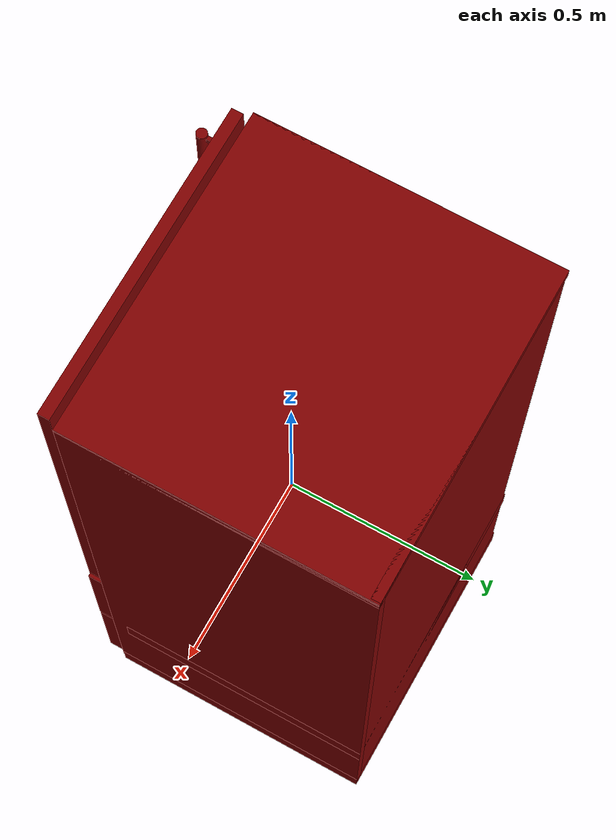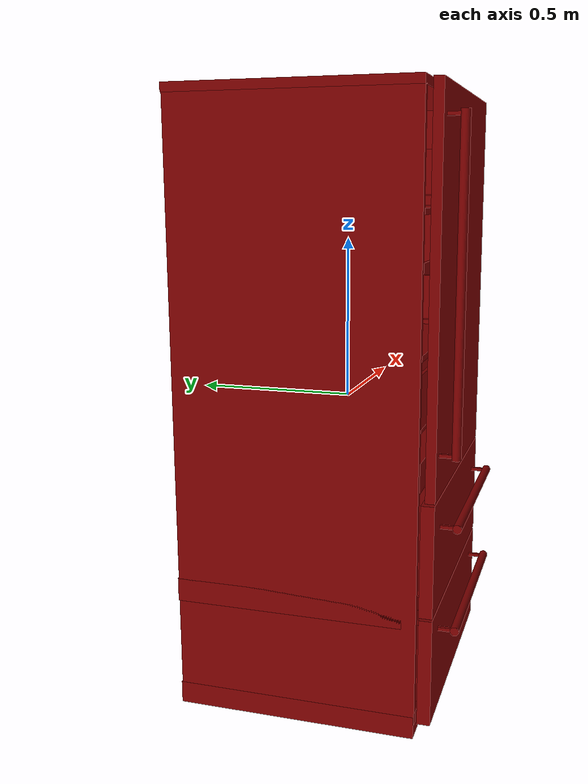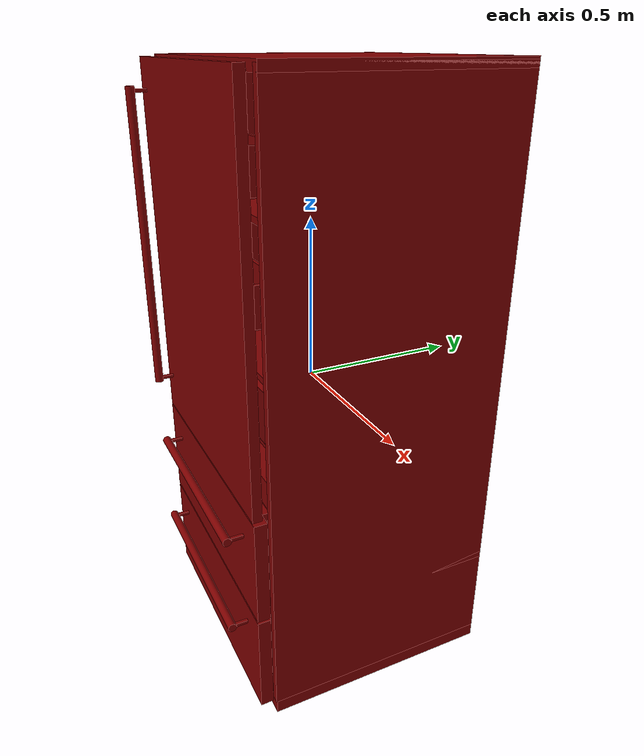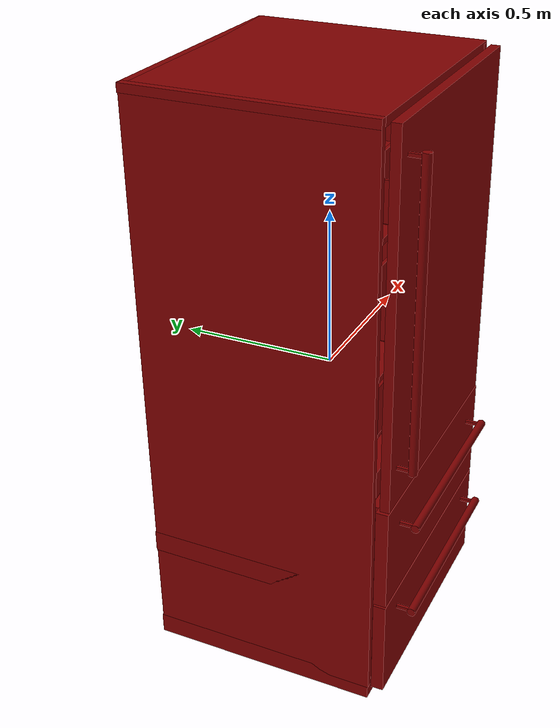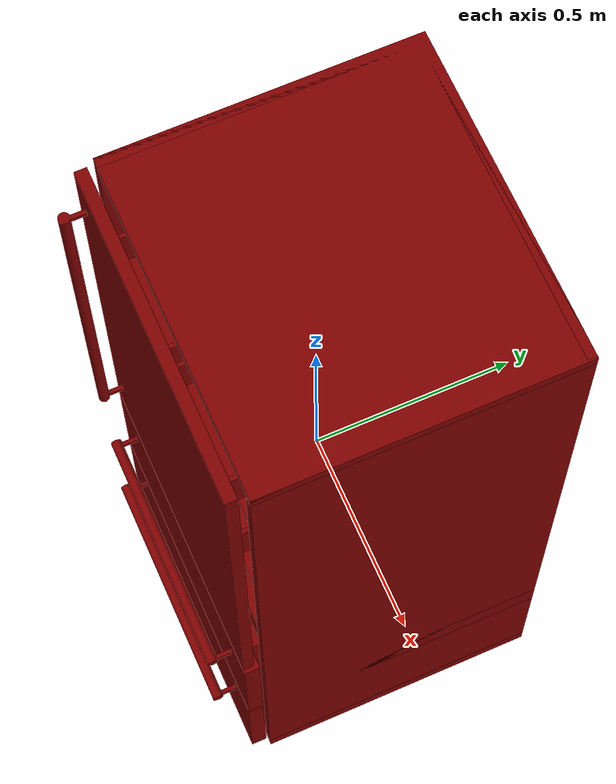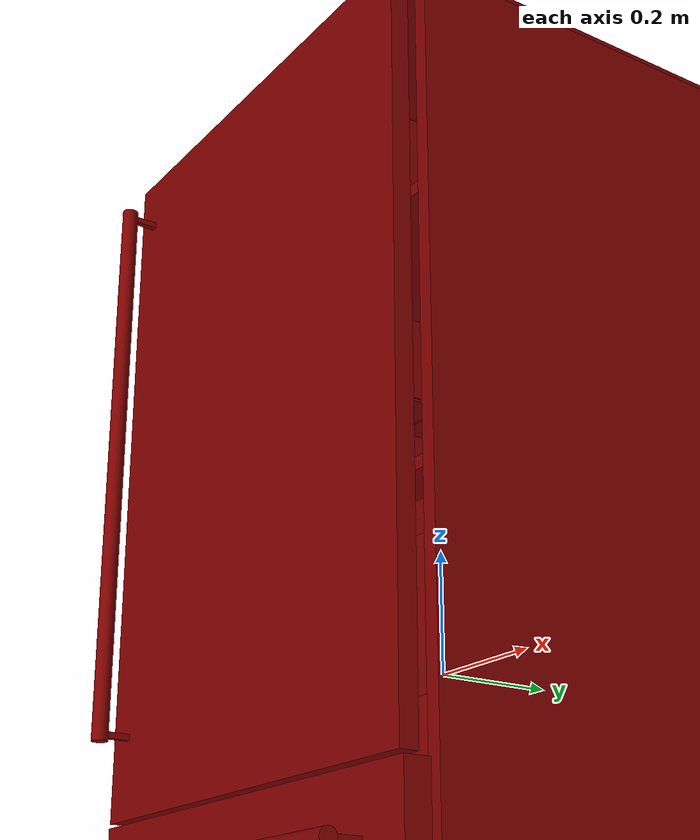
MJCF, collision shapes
<?xml version='1.0' encoding='UTF-8'?>
<mujoco model="model">
  <option timestep="0.002" gravity="0.0 0.0 -9.81"/>
  <compiler angle="radian"/>
  <asset>
    <mesh file="visuals/freezer0.obj" name="freezer0_vis"/>
    <mesh file="visuals/freezer1.obj" name="freezer1_vis"/>
    <mesh file="visuals/fridge_door.obj" name="fridge_door_vis"/>
    <mesh file="visuals/fridge_door_Clear.obj" name="fridge_door_Clear_vis"/>
    <mesh file="visuals/fridge_drawer0.obj" name="fridge_drawer0_vis"/>
    <mesh file="visuals/Body001.obj" name="Body001_vis"/>
    <mesh file="visuals/Body001_Clear.obj" name="Body001_Clear_vis"/>
    <texture file="visuals/T_BC001.png" name="Body001_material" type="2d"/>
    <material name="Body001_material" rgba="1 1 1 1.0" texture="Body001_material" shininess="0.1" specular="5"/>
    <texture file="visuals/T_BC001.png" name="freezer0_material" type="2d"/>
    <material name="freezer0_material" rgba="1 1 1 1.0" texture="freezer0_material" shininess="0.1" specular="5"/>
    <texture file="visuals/T_BC001.png" name="freezer1_material" type="2d"/>
    <material name="freezer1_material" rgba="1 1 1 1.0" texture="freezer1_material" shininess="0.1" specular="5"/>
    <texture file="visuals/T_BC001.png" name="fridge_door_material" type="2d"/>
    <material name="fridge_door_material" rgba="1 1 1 1.0" texture="fridge_door_material" shininess="0.1" specular="5"/>
    <material name="fridge_door_Clear_material" rgba="0.6450680494308472 0.6450680494308472 0.6450680494308472 0.699999988079071" shininess="0.5" specular="0.3103448502657381"/>
    <texture file="visuals/T_BC001.png" name="fridge_drawer0_material" type="2d"/>
    <material name="fridge_drawer0_material" rgba="1 1 1 1.0" texture="fridge_drawer0_material" shininess="0.1" specular="5"/>
    <material name="Body001_Clear_material" rgba="0.6450680494308472 0.6450680494308472 0.6450680494308472 0.699999988079071" shininess="0.5" specular="0.3103448502657381"/>
  </asset>
  <default>
    <default class="visual">
      <geom conaffinity="0" contype="0" group="1" type="mesh"/>
    </default>
    <default class="collision">
      <geom group="0" rgba="0.5 0 0 0.5"/>
    </default>
    <default class="spawn">
      <geom group="0" rgba="1 1 1 0.5" contype="0" conaffinity="0"/>
      <site group="0" rgba="1 1 1 0.5"/>
    </default>
    <default class="region">
      <geom group="1" conaffinity="0" contype="0" rgba="0 1 0 0"/>
    </default>
  </default>
  <worldbody>
    <body>
      <body name="object">
        <geom mesh="Body001_vis" type="mesh" solimp="0.998 0.998 0.001" solref="0.001 1" friction="0.95 0.3 0.1" class="visual" material="Body001_material"/>
        <geom class="collision" type="box" pos="-0.39497751 0.05395034 0.02155653" size="0.011891854926943779 0.37056872248649597 0.9155135750770569" quat="1.0 0.0 0.0 0.0"/>
        <geom class="collision" type="box" pos="-0.00000002 0.05545800 0.92354369" size="0.40686941146850586 0.3720763921737671 0.013526342809200287" quat="1.0 0.0 0.0 0.0"/>
        <geom class="collision" type="box" pos="0.39497739 0.05545801 0.01801842" size="0.011892003938555717 0.3720764219760895 0.9119754433631897" quat="1.0 0.0 0.0 0.0"/>
        <geom class="collision" type="box" pos="0.00540148 0.06342331 0.58872682" size="0.3973832428455353 0.36109575629234314 0.009213412180542946" quat="1.0 0.0 0.0 0.0"/>
        <geom class="collision" type="box" pos="0.00540148 0.06342331 0.17739993" size="0.3973832428455353 0.36109575629234314 0.009213412180542946" quat="1.0 0.0 0.0 0.0"/>
        <geom class="collision" type="box" pos="0.00540148 0.06342331 -0.17582542" size="0.3973832428455353 0.36109575629234314 0.04417560249567032" quat="1.0 0.0 0.0 0.0"/>
        <geom class="collision" type="box" pos="-0.00000002 0.05650592 -0.90281916" size="0.40686941146850586 0.37102845311164856 0.03425087034702301" quat="1.0 0.0 0.0 0.0"/>
        <geom class="collision" type="box" pos="0.00540148 0.41649570 0.03226795" size="0.3973832428455353 0.011038696393370628 0.9048020839691162" quat="1.0 0.0 0.0 0.0"/>
        <geom class="collision" type="box" pos="-0.00000002 0.07640629 -0.55741584" size="0.40686941146850586 0.35112807154655457 0.03589528053998947" quat="1.0 0.0 0.0 0.0"/>
        <body name="freezer0">
          <geom class="region" name="reg_freezer0" type="box" pos="-0.009549875000000013 0.023480625000000005 -0.70870924" size="0.28844478500000004 0.289434965 0.09238983"/>
          <joint axis="0.0 -1.0 0.0" pos="-0.00000131 -0.04179691 -0.72343755" limited="true" name="freezer0_door_joint" range="0.0 0.45" type="slide" damping="1" frictionloss="1" armature=".01" stiffness="0.05"/>
          <geom mesh="freezer0_vis" type="mesh" solimp="0.998 0.998 0.001" solref="0.001 1" friction="0.95 0.3 0.1" class="visual" material="freezer0_material"/>
          <geom class="collision" type="box" pos="-0.01719630 0.00805857 -0.82255793" size="0.2997744083404541 0.310689240694046 0.0164509154856205" quat="1.0 0.0 0.0 0.0"/>
          <geom class="collision" type="box" pos="0.31374428 0.02064973 -0.72549593" size="0.030391253530979156 0.323280930519104 0.11351040005683899" quat="1.0 0.0 0.0 0.0"/>
          <geom class="collision" type="box" pos="-0.33325869 0.00805857 -0.72549593" size="0.03039240837097168 0.31069034337997437 0.1135106012225151" quat="1.0 0.0 0.0 0.0"/>
          <geom class="collision" type="box" pos="-0.00967104 -0.31512372 -0.71773422" size="0.35102763772010803 0.020464807748794556 0.12127181887626648" quat="1.0 0.0 0.0 0.0"/>
          <geom class="collision" type="box" pos="-0.02586513 0.32982935 -0.72549593" size="0.3348340690135956 0.011941133067011833 0.11351102590560913" quat="1.0 0.0 0.0 0.0"/>
          <geom class="collision" type="box" pos="-0.00089944 -0.34363709 -0.72607809" size="0.39961814880371094 0.019954252988100052 0.16411897540092468" quat="1.0 0.0 0.0 0.0" name="freezer0_door_main"/>
          <geom class="collision" type="cylinder" pos="0.00185995 -0.41500480 -0.62553763" size="0.013434533961117268 0.31531861424446106" quat="0.7071068286895752 -0.0 0.7071067690849304 0.0" name="freezer0_door_handle_main"/>
          <geom class="collision" type="box" pos="-0.30049911 -0.38361881 -0.62673843" size="0.005130494944751263 0.022282758727669716 0.005130494944751263" quat="1.0 0.0 0.0 0.0" name="freezer0_door_handle_1"/>
          <geom class="collision" type="box" pos="0.30714712 -0.38361881 -0.62673843" size="0.005130494944751263 0.022282758727669716 0.005130494944751263" quat="1.0 0.0 0.0 0.0" name="freezer0_door_handle_2"/>
        </body>
        <body name="freezer1">
          <geom class="region" name="reg_freezer1" type="box" pos="-0.009549875000000013 0.023480625000000005 -0.359045865" size="0.28844478500000004 0.289434965 0.10523338499999998"/>
          <joint axis="0.0 -1.0 0.0" pos="-0.00000131 -0.04179691 -0.38421291" limited="true" name="freezer1_door_joint" range="0.0 0.45" type="slide" damping="1" frictionloss="1" armature=".01" stiffness="0.05"/>
          <geom mesh="freezer1_vis" type="mesh" solimp="0.998 0.998 0.001" solref="0.001 1" friction="0.95 0.3 0.1" class="visual" material="freezer1_material"/>
          <geom class="collision" type="box" pos="-0.00089944 -0.34363709 -0.38572156" size="0.3996121883392334 0.019953878596425056 0.16868935525417328" quat="1.0 0.0 0.0 0.0" name="freezer1_door_main"/>
          <geom class="collision" type="box" pos="-0.02715708 0.33091291 -0.37637243" size="0.33648502826690674 0.01302456296980381 0.12684671580791473" quat="1.0 0.0 0.0 0.0"/>
          <geom class="collision" type="box" pos="-0.00967104 -0.31512372 -0.36607426" size="0.3510238230228424 0.020464569330215454 0.13714516162872314" quat="1.0 0.0 0.0 0.0"/>
          <geom class="collision" type="box" pos="-0.33325872 0.00805857 -0.37637240" size="0.030392171815037727 0.3106876313686371 0.12684723734855652" quat="1.0 0.0 0.0 0.0"/>
          <geom class="collision" type="box" pos="0.31374428 0.02064986 -0.37637240" size="0.030391089618206024 0.3232794404029846 0.1268475204706192" quat="1.0 0.0 0.0 0.0"/>
          <geom class="collision" type="box" pos="-0.00975666 0.00805857 -0.48593163" size="0.2931008040904999 0.31068870425224304 0.017292514443397522" quat="1.0 0.0 0.0 0.0"/>
          <geom class="collision" type="cylinder" pos="0.00185995 -0.41500480 -0.30819646" size="0.013434533961117268 0.31531861424446106" quat="0.7071068286895752 -0.0 0.7071067690849304 0.0" name="freezer1_door_handle_main"/>
          <geom class="collision" type="box" pos="-0.30049911 -0.38361881 -0.30825678" size="0.005130494944751263 0.022282758727669716 0.005130494944751263" quat="1.0 0.0 0.0 0.0" name="freezer1_door_handle_2"/>
          <geom class="collision" type="box" pos="0.30714712 -0.38361881 -0.30825678" size="0.005130494944751263 0.022282758727669716 0.005130494944751263" quat="1.0 0.0 0.0 0.0" name="freezer1_door_handle_1"/>
        </body>
        <body name="fridge_door">
          <joint axis="0.0 0.0 1.0" pos="0.37557209 -0.33750541 0.36276048" limited="true" name="fridge_door_joint" range="0.0 1.5707963267948966" type="hinge" damping="1" frictionloss="1" armature=".01" stiffness="0.05"/>
          <geom mesh="fridge_door_vis" type="mesh" solimp="0.998 0.998 0.001" solref="0.001 1" friction="0.95 0.3 0.1" class="visual" material="fridge_door_material"/>
          <geom class="collision" type="box" pos="-0.17556408 -0.20511560 0.69064331" size="0.14007340371608734 0.005236338824033737 0.05930149927735329" quat="1.0 0.0 0.0 0.0"/>
          <geom class="collision" type="box" pos="-0.17556408 -0.27580000 0.63874626" size="0.14007358253002167 0.0729801282286644 0.007407063152641058" quat="1.0 0.0 0.0 0.0"/>
          <geom class="collision" type="box" pos="-0.31304398 -0.27580000 0.69364119" size="0.005143939517438412 0.07298021763563156 0.05902764946222305" quat="1.0 0.0 0.0 0.0"/>
          <geom class="collision" type="box" pos="-0.03745507 -0.27580000 0.69364119" size="0.00514395022764802 0.07298029959201813 0.05902773141860962" quat="1.0 0.0 0.0 0.0"/>
          <geom class="collision" type="box" pos="0.28167146 -0.27580000 0.69364119" size="0.005143960937857628 0.07298038899898529 0.05902782455086708" quat="1.0 0.0 0.0 0.0"/>
          <geom class="collision" type="box" pos="0.00820251 -0.27580000 0.69364119" size="0.005143971182405949 0.07298047095537186 0.059027913957834244" quat="1.0 0.0 0.0 0.0"/>
          <geom class="collision" type="box" pos="0.14462245 -0.27580000 0.63874626" size="0.13901446759700775 0.07298056036233902 0.007407117635011673" quat="1.0 0.0 0.0 0.0"/>
          <geom class="collision" type="box" pos="0.14462243 -0.20511560 0.69064331" size="0.13901464641094208 0.005236415192484856 0.059302106499671936" quat="1.0 0.0 0.0 0.0"/>
          <geom class="collision" type="box" pos="-0.02154362 -0.20952725 0.35754079" size="0.3051683008670807 0.005236425902694464 0.059302184730768204" quat="1.0 0.0 0.0 0.0"/>
          <geom class="collision" type="box" pos="-0.02154363 -0.27800582 0.30564371" size="0.30516892671585083 0.07077499479055405 0.007407149765640497" quat="1.0 0.0 0.0 0.0"/>
          <geom class="collision" type="box" pos="-0.32412958 -0.27800582 0.36053866" size="0.005144025664776564 0.07077508419752121 0.05902833864092827" quat="1.0 0.0 0.0 0.0"/>
          <geom class="collision" type="box" pos="0.28167146 -0.27800582 0.36053866" size="0.005144036840647459 0.07077516615390778 0.05902843922376633" quat="1.0 0.0 0.0 0.0"/>
          <geom class="collision" type="box" pos="-0.00315807 -0.34939180 0.35968018" size="0.39363041520118713 0.014511222019791603 0.5703000426292419" quat="1.0 0.0 0.0 0.0" name="fridge_door_main"/>
          <geom class="collision" type="cylinder" pos="-0.34822339 -0.41265936 0.38023895" size="0.013434533961117268 0.4720741808414459" quat="1.0 0.0 0.0 0.0" name="fridge_door_handle_main"/>
          <geom class="collision" type="box" pos="-0.34831557 -0.38361881 -0.08119158" size="0.005130494944751263 0.022282758727669716 0.005130494944751263" quat="1.0 0.0 0.0 0.0" name="fridge_door_handle_1"/>
          <geom class="collision" type="box" pos="-0.34831557 -0.38361881 0.84001863" size="0.005130494944751263 0.022282758727669716 0.005130494944751263" quat="1.0 0.0 0.0 0.0" name="fridge_door_handle_2"/>
          <body name="fridge_door_Clear">
            <geom mesh="fridge_door_Clear_vis" type="mesh" solimp="0.998 0.998 0.001" solref="0.001 1" friction="0.95 0.3 0.1" class="visual" material="fridge_door_Clear_material"/>
            <geom class="collision" type="box" pos="-0.17556408 -0.20511560 0.69064331" size="0.14007340371608734 0.005236338824033737 0.05930149927735329" quat="1.0 0.0 0.0 0.0"/>
            <geom class="collision" type="box" pos="-0.17556408 -0.27580000 0.63874626" size="0.14007358253002167 0.0729801282286644 0.007407063152641058" quat="1.0 0.0 0.0 0.0"/>
            <geom class="collision" type="box" pos="-0.31304398 -0.27580000 0.69364119" size="0.005143939517438412 0.07298021763563156 0.05902764946222305" quat="1.0 0.0 0.0 0.0"/>
            <geom class="collision" type="box" pos="-0.03745507 -0.27580000 0.69364119" size="0.00514395022764802 0.07298029959201813 0.05902773141860962" quat="1.0 0.0 0.0 0.0"/>
            <geom class="collision" type="box" pos="0.28167146 -0.27580000 0.69364119" size="0.005143960937857628 0.07298038899898529 0.05902782455086708" quat="1.0 0.0 0.0 0.0"/>
            <geom class="collision" type="box" pos="0.00820251 -0.27580000 0.69364119" size="0.005143971182405949 0.07298047095537186 0.059027913957834244" quat="1.0 0.0 0.0 0.0"/>
            <geom class="collision" type="box" pos="0.14462245 -0.27580000 0.63874626" size="0.13901446759700775 0.07298056036233902 0.007407117635011673" quat="1.0 0.0 0.0 0.0"/>
            <geom class="collision" type="box" pos="0.14462243 -0.20511560 0.69064331" size="0.13901464641094208 0.005236415192484856 0.059302106499671936" quat="1.0 0.0 0.0 0.0"/>
            <geom class="collision" type="box" pos="-0.02154362 -0.20952725 0.35754079" size="0.3051683008670807 0.005236425902694464 0.059302184730768204" quat="1.0 0.0 0.0 0.0"/>
            <geom class="collision" type="box" pos="-0.02154363 -0.27800582 0.30564371" size="0.30516892671585083 0.07077499479055405 0.007407149765640497" quat="1.0 0.0 0.0 0.0"/>
            <geom class="collision" type="box" pos="-0.32412958 -0.27800582 0.36053866" size="0.005144025664776564 0.07077508419752121 0.05902833864092827" quat="1.0 0.0 0.0 0.0"/>
            <geom class="collision" type="box" pos="0.28167146 -0.27800582 0.36053866" size="0.005144036840647459 0.07077516615390778 0.05902843922376633" quat="1.0 0.0 0.0 0.0"/>
          </body>
        </body>
        <body name="fridge_drawer0">
          <geom class="region" name="reg_fridge_drawer0" type="box" pos="-0.00019586499999998952 0.05510359499999999 0.023312015" size="0.330726875 0.269365975 0.120207165"/>
          <joint axis="0.0 -1.0 0.0" pos="-0.00084027 0.03965583 0.01164002" limited="true" name="fridge_drawer0_joint" range="0.0 0.45" type="slide" damping="1" frictionloss="1" armature=".01" stiffness="0.05"/>
          <geom mesh="fridge_drawer0_vis" type="mesh" solimp="0.998 0.998 0.001" solref="0.001 1" friction="0.95 0.3 0.1" class="visual" material="fridge_drawer0_material"/>
          <geom class="collision" type="box" pos="-0.00199574 0.33525218 0.01405030" size="0.35589125752449036 0.006798130925744772 0.13309310376644135" quat="1.0 0.0 0.0 0.0"/>
          <geom class="collision" type="box" pos="-0.34772512 0.04165790 0.01405030" size="0.01123232115060091 0.28192782402038574 0.13309310376644135" quat="1.0 0.0 0.0 0.0"/>
          <geom class="collision" type="box" pos="0.34516126 0.04165790 0.01405030" size="0.012115423567593098 0.28192782402038574 0.13309310376644135" quat="1.0 0.0 0.0 0.0"/>
          <geom class="collision" type="box" pos="0.00171256 0.04409108 -0.11344249" size="0.34323397278785706 0.27949464321136475 0.011595523916184902" quat="1.0 0.0 0.0 0.0"/>
          <geom class="collision" type="box" pos="0.29343528 -0.24953459 0.12132292" size="0.060460224747657776 0.008002796210348606 0.02655232883989811" quat="0.9936688542366028 0.11234861612319946 0.0 0.0"/>
          <geom class="collision" type="box" pos="-0.00028963 -0.24960471 0.12130686" size="0.0964420735836029 0.008074725978076458 0.02655232883989811" quat="0.9936688542366028 0.11234861612319946 0.0 0.0"/>
          <geom class="collision" type="box" pos="-0.29691547 -0.25004287 0.12120650" size="0.061095669865608215 0.008524215780198574 0.02655232883989811" quat="0.9936688542366028 0.11234861612319946 0.0 0.0"/>
          <geom class="collision" type="box" pos="-0.01383278 -0.23942102 -0.00564160" size="0.3444600999355316 0.010249311104416847 0.10481306910514832" quat="0.9978872537612915 0.06496962159872055 0.0 0.0"/>
        </body>
        <body name="Body001_Clear">
          <geom mesh="Body001_Clear_vis" type="mesh" solimp="0.998 0.998 0.001" solref="0.001 1" friction="0.95 0.3 0.1" class="visual" material="Body001_Clear_material"/>
          <geom class="collision" type="box" pos="0.00540148 0.06342331 0.58872682" size="0.3973832428455353 0.36109575629234314 0.009213412180542946" quat="1.0 0.0 0.0 0.0"/>
          <geom class="collision" type="box" pos="0.00540148 0.06342331 0.17739993" size="0.3973832428455353 0.36109575629234314 0.009213412180542946" quat="1.0 0.0 0.0 0.0"/>
        </body>
        <geom class="region" name="reg_fridge_shelf0" type="box" pos="0.00026555500000000065 0.103317555 0.38312892499999995" size="0.37840813500000003 0.297654305 0.18763324499999998"/>
        <geom class="region" name="reg_fridge_shelf1" type="box" pos="-2.780500000001962e-05 0.103317555 0.75406304" size="0.37715820499999997 0.297654305 0.14905678"/>
        <geom class="region" name="reg_main" type="box" pos="9.999999994736442e-09 0.031517025000000004 0.0" size="0.40786938 0.39701734499999997 0.93807007"/>
      </body>
    </body>
  </worldbody>
  <actuator>
    <motor name="freezer0_door_joint_actuator" joint="freezer0_door_joint" gear="50"/>
    <motor name="freezer1_door_joint_actuator" joint="freezer1_door_joint" gear="50"/>
    <motor name="fridge_door_joint_actuator" joint="fridge_door_joint" gear="50"/>
    <motor name="fridge_drawer0_joint_actuator" joint="fridge_drawer0_joint" gear="50"/>
  </actuator>
</mujoco>
